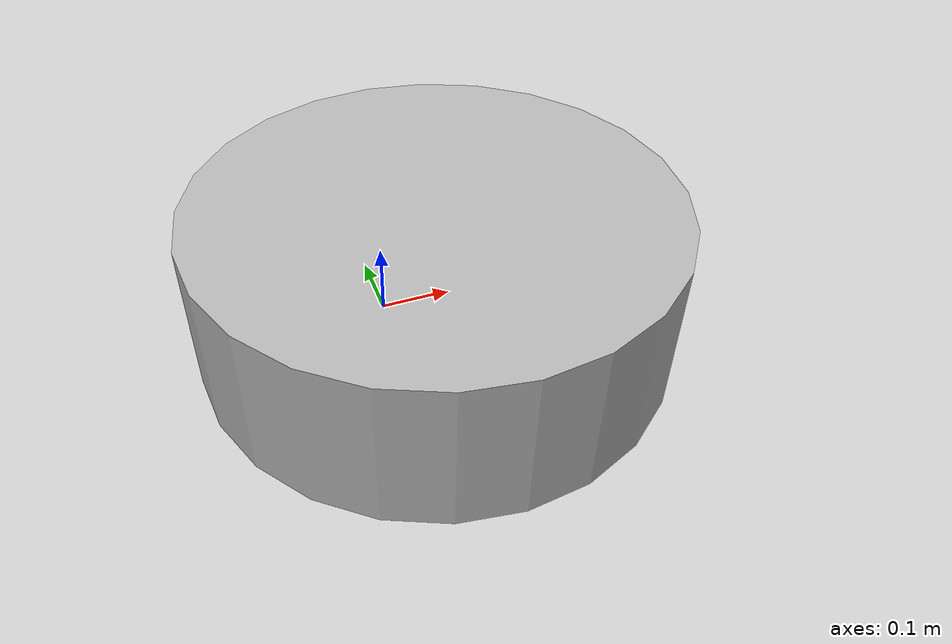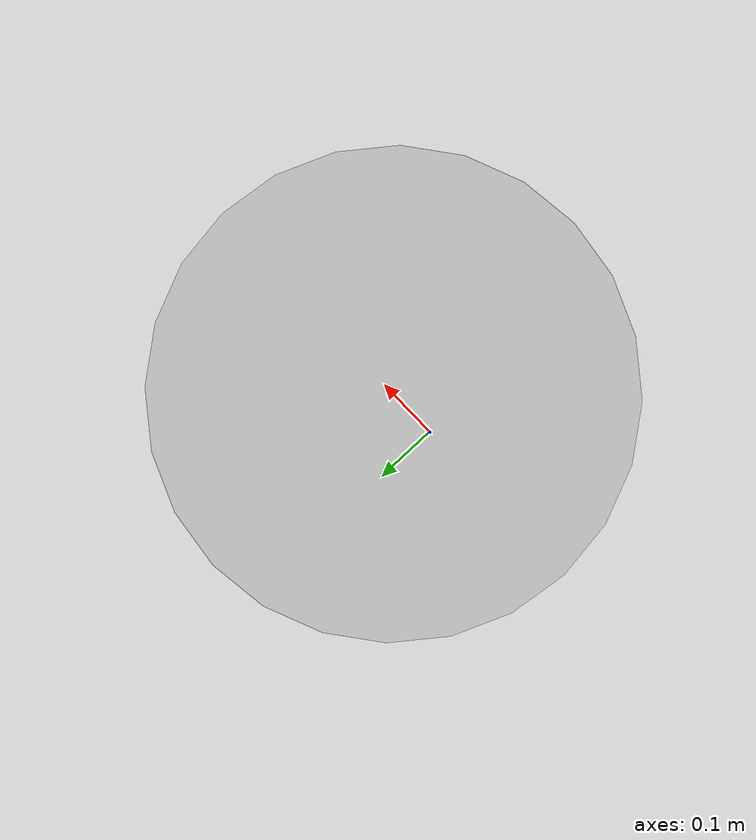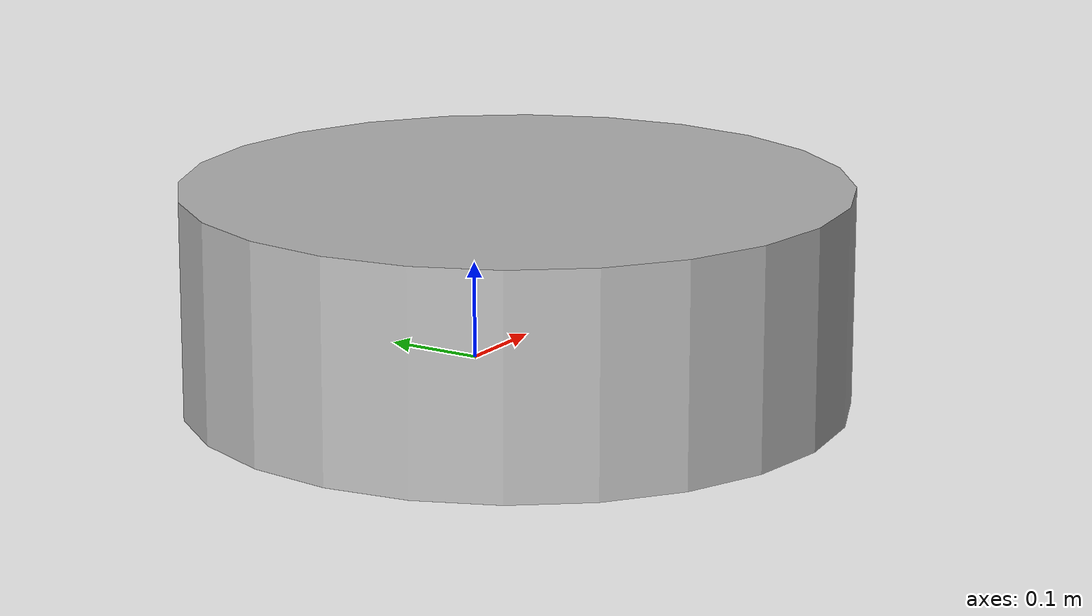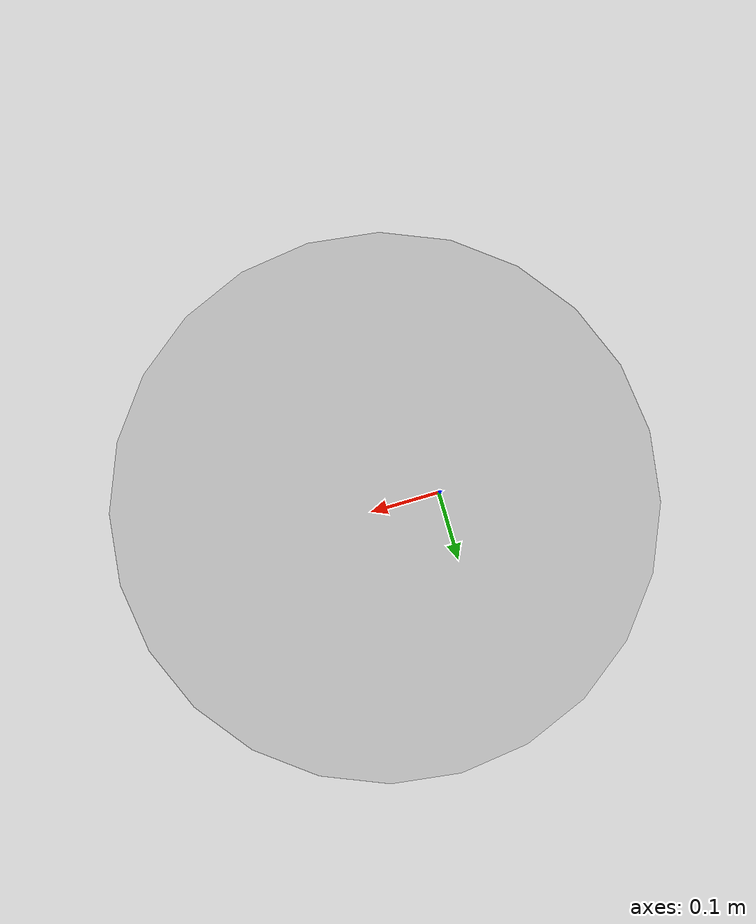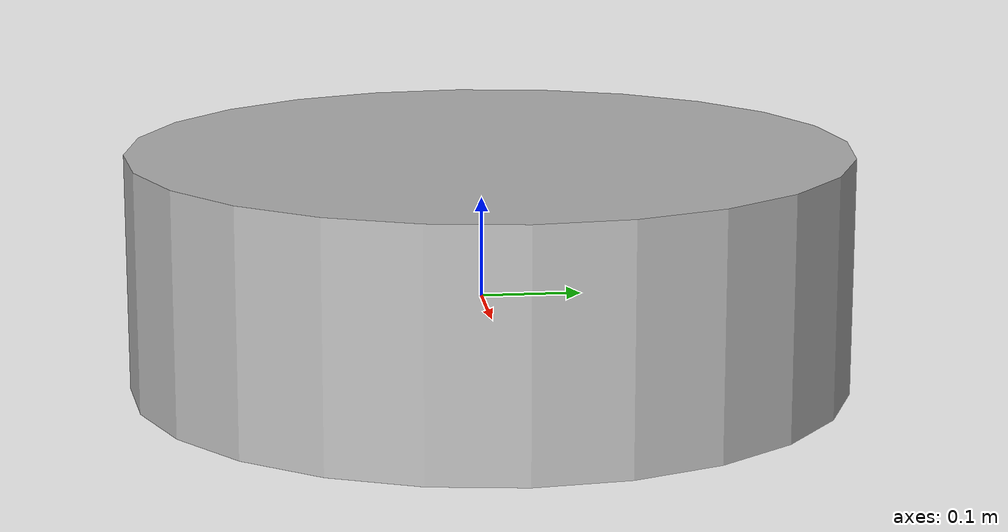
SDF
<?xml version="1.0" ?>
<sdf version="1.7">
  <world name="buoyant_cylinder">
    <plugin
      filename="gz-sim-apply-link-wrench-system"
      name="gz::sim::systems::ApplyLinkWrench">
    </plugin>

    <scene>
      <ambient>0.0 1.0 1.0</ambient>
      <background>0.0 0.7 0.8</background>

      <grid>false</grid>
    </scene>

    <light type="directional" name="sun">
      <cast_shadows>true</cast_shadows>
      <pose>0 0 10 0 0 0</pose>
      <diffuse>1 1 1 1</diffuse>
      <specular>0.5 0.5 0.5 1</specular>
      <attenuation>
        <range>1000</range>
        <constant>0.9</constant>
        <linear>0.01</linear>
        <quadratic>0.001</quadratic>
      </attenuation>
      <direction>-0.5 0.1 -0.9</direction>
    </light>

    <plugin
      filename="gz-sim-physics-system"
      name="gz::sim::systems::Physics">
    </plugin>

    <plugin
      filename="gz-sim-buoyancy-system"
      name="gz::sim::systems::Buoyancy">
      <graded_buoyancy>
        <default_density>1025</default_density>
        <density_change>
          <above_depth>0</above_depth>
          <density>1.125</density>
        </density_change>
      </graded_buoyancy>
    </plugin>

    <plugin
      filename="gz-sim-user-commands-system"
      name="gz::sim::systems::UserCommands">
    </plugin>

    <plugin
      filename="gz-sim-scene-broadcaster-system"
      name="gz::sim::systems::SceneBroadcaster">
    </plugin>

    <plugin
      filename="gz-sim-sensors-system"
      name="gz::sim::systems::Sensors">
    </plugin>

    <gui fullscreen="0">
      <!-- 3D scene -->
      <plugin filename="MinimalScene" name="3D View">
        <gz-gui>
          <title>3D View</title>
          <property type="bool" key="showTitleBar">false</property>
          <property type="string" key="state">docked</property>
        </gz-gui>
        <engine>ogre2</engine>
        <scene>scene</scene>
        <ambient_light>0.4 0.4 0.4</ambient_light>
        <background_color>0.8 0.8 0.8</background_color>
        <!-- looking at robot -->
        <camera_pose>0 6 6 0 0.5 -1.57</camera_pose>
        <!-- looking at all science data for 2003080103_mb_l3_las.csv -->
        <camera_clip>
          <!-- ortho view needs low near clip -->
          <!-- but a very low near clip messes orbit's far clip ?! -->
          <near>0.1</near>
          <!-- See 3000 km away -->
          <far>3000000</far>
        </camera_clip>
      </plugin>
      <!-- Plugins that add functionality to the scene -->
      <plugin filename="EntityContextMenuPlugin" name="Entity context menu">
        <gz-gui>
          <property key="state" type="string">floating</property>
          <property key="width" type="double">5</property>
          <property key="height" type="double">5</property>
          <property key="showTitleBar" type="bool">false</property>
        </gz-gui>
      </plugin>
      <plugin filename="GzSceneManager" name="Scene Manager">
        <gz-gui>
          <anchors target="3D View">
            <line own="right" target="right"/>
            <line own="top" target="top"/>
          </anchors>
          <property key="resizable" type="bool">false</property>
          <property key="width" type="double">5</property>
          <property key="height" type="double">5</property>
          <property key="state" type="string">floating</property>
          <property key="showTitleBar" type="bool">false</property>
        </gz-gui>
      </plugin>
      <plugin filename="InteractiveViewControl" name="Interactive view control">
        <gz-gui>
          <anchors target="3D View">
            <line own="right" target="right"/>
            <line own="top" target="top"/>
          </anchors>
          <property key="resizable" type="bool">false</property>
          <property key="width" type="double">5</property>
          <property key="height" type="double">5</property>
          <property key="state" type="string">floating</property>
          <property key="showTitleBar" type="bool">false</property>
        </gz-gui>
      </plugin>
      <plugin filename="CameraTracking" name="Camera Tracking">
        <gz-gui>
          <anchors target="3D View">
            <line own="right" target="right"/>
            <line own="top" target="top"/>
          </anchors>
          <property key="resizable" type="bool">false</property>
          <property key="width" type="double">5</property>
          <property key="height" type="double">5</property>
          <property key="state" type="string">floating</property>
          <property key="showTitleBar" type="bool">false</property>
        </gz-gui>
      </plugin>
      <plugin filename="MarkerManager" name="Marker manager">
        <gz-gui>
          <anchors target="3D View">
            <line own="right" target="right"/>
            <line own="top" target="top"/>
          </anchors>
          <property key="resizable" type="bool">false</property>
          <property key="width" type="double">5</property>
          <property key="height" type="double">5</property>
          <property key="state" type="string">floating</property>
          <property key="showTitleBar" type="bool">false</property>
        </gz-gui>
        <warn_on_action_failure>false</warn_on_action_failure>
      </plugin>
      <plugin filename="SelectEntities" name="Select Entities">
        <gz-gui>
          <anchors target="Select entities">
            <line own="right" target="right"/>
            <line own="top" target="top"/>
          </anchors>
          <property key="resizable" type="bool">false</property>
          <property key="width" type="double">5</property>
          <property key="height" type="double">5</property>
          <property key="state" type="string">floating</property>
          <property key="showTitleBar" type="bool">false</property>
        </gz-gui>
      </plugin>
      <plugin filename="VisualizationCapabilities" name="Visualization Capabilities">
        <gz-gui>
          <anchors target="Select entities">
            <line own="right" target="right"/>
            <line own="top" target="top"/>
          </anchors>
          <property key="resizable" type="bool">false</property>
          <property key="width" type="double">5</property>
          <property key="height" type="double">5</property>
          <property key="state" type="string">floating</property>
          <property key="showTitleBar" type="bool">false</property>
        </gz-gui>
      </plugin>
      <plugin filename="Spawn" name="Spawn Entities">
        <gz-gui>
          <anchors target="Select entities">
            <line own="right" target="right"/>
            <line own="top" target="top"/>
          </anchors>
          <property key="resizable" type="bool">false</property>
          <property key="width" type="double">5</property>
          <property key="height" type="double">5</property>
          <property key="state" type="string">floating</property>
          <property key="showTitleBar" type="bool">false</property>
        </gz-gui>
      </plugin>
      <!-- World control -->
      <plugin filename="WorldControl" name="World control">
        <gz-gui>
          <title>World control</title>
          <property type="bool" key="showTitleBar">false</property>
          <property type="bool" key="resizable">false</property>
          <property type="double" key="height">72</property>
          <property type="double" key="width">121</property>
          <property type="double" key="z">1</property>
          <property type="string" key="state">floating</property>
          <anchors target="3D View">
            <line own="left" target="left"/>
            <line own="bottom" target="bottom"/>
          </anchors>
        </gz-gui>
        <play_pause>true</play_pause>
        <step>true</step>
        <start_paused>true</start_paused>
      </plugin>
      <!-- World statistics -->
      <plugin filename="WorldStats" name="World stats">
        <gz-gui>
          <title>World stats</title>
          <property type="bool" key="showTitleBar">false</property>
          <property type="bool" key="resizable">false</property>
          <property type="double" key="height">110</property>
          <property type="double" key="width">290</property>
          <property type="double" key="z">1</property>
          <property type="string" key="state">floating</property>
          <anchors target="3D View">
            <line own="right" target="right"/>
            <line own="bottom" target="bottom"/>
          </anchors>
        </gz-gui>
        <sim_time>true</sim_time>
        <real_time>true</real_time>
        <real_time_factor>true</real_time_factor>
        <iterations>true</iterations>
      </plugin>
      <plugin filename="ComponentInspector" name="Component Inspector">
        <gz-gui>
          <title>Inspector</title>
          <property type="string" key="state">docked_collapsed</property>
        </gz-gui>
      </plugin>
      <plugin filename="GridConfig" name="Grid config">
        <gz-gui>
          <property type="string" key="state">docked_collapsed</property>
        </gz-gui>
        <insert>
          <!-- 300 km x 300 km -->
          <cell_count>6</cell_count>
          <vertical_cell_count>0</vertical_cell_count>
          <!-- 50 km -->
          <cell_length>50000</cell_length>
          <pose>0 100000 0  0 0 0.32</pose>
          <color>0 1 0 1</color>
        </insert>
        <insert>
          <!-- 0.1 km x 0.1 km -->
          <cell_count>100</cell_count>
          <vertical_cell_count>0</vertical_cell_count>
          <cell_length>1</cell_length>
          <pose>0 0 0  0 0 0</pose>
          <color>0.5 0.5 0.5 1</color>
        </insert>
      </plugin>
    </gui>

    <!-- This invisible plane helps with orbiting the camera, especially at large scales -->
    <model name="horizontal_plane">
      <static>true</static>
      <link name="link">
        <visual name="visual">
          <geometry>
            <plane>
              <normal>0 0 1</normal>
              <!-- 300 km x 300 km -->
              <size>300000 300000</size>
            </plane>
          </geometry>
          <transparency>1.0</transparency>
        </visual>
      </link>
    </model>

    <!-- User options - Modify these parameters according to your needs -->

    <!-- Physics parameters -->
    <physics name="1ms" type="dart">
      <max_step_size>0.02</max_step_size>
      <real_time_factor>1</real_time_factor>
    </physics>

    <!-- Model to load -->
    <model name="my_turtle">
      <link name='base_link'>

        <inertial>
          <pose>0 0 0 0 0 0</pose>
          <mass>10</mass>
          <inertia>
            <ixx>0.35032999999999995</ixx>
            <ixy>0</ixy>
            <ixz>0</ixz>
            <iyy>0.35032999999999995</iyy>
            <iyz>0</iyz>
            <izz>0.61250000000000006</izz>
          </inertia>
        </inertial>

        <collision name='collision'>
          <geometry>
            <box>
              <size>1 1 0.009948450858321252</size>
            </box>
          </geometry>
        </collision>

        <visual name='visual'>
          <pose>0.08 0 0.05 0 0 0</pose>
          <geometry>
            <cylinder>
            <radius>0.35</radius>
              <length>0.23</length>
            </cylinder>
          </geometry>
        </visual>
      </link>

      <!-- Uncomment to generate a trajectory -->
      <plugin filename="gz-sim-trajectory-follower-system"
              name="gz::sim::systems::TrajectoryFollower">
        <link_name>base_link</link_name>
        <force>0.2</force>
        <torque>0.01</torque>
        <range_tolerance>0.1</range_tolerance>
        <waypoints>
          <waypoint>1 0</waypoint>
        </waypoints>
      </plugin>

      <!-- Uncomment to add hydrodynamics -->
      <plugin
        filename="gz-sim-hydrodynamics-system"
        name="gz::sim::systems::Hydrodynamics">
        <link_name>base_link</link_name>
        <xDotU>-0.04876161</xDotU>
        <yDotV>-1.26324739</yDotV>
        <zDotW>-1.26324739</zDotW>
        <kDotP>0</kDotP>
        <mDotQ>-0.3346</mDotQ>
        <nDotR>-0.3346</nDotR>
        <xUabsU>-0.62282</xUabsU>
        <xU>-5</xU>
        <yVabsV>-60.127</yVabsV>
        <yV>-5</yV>
        <zWabsW>-6.0127</zWabsW>
        <zW>-100</zW>
        <kPabsP>-0.001916</kPabsP>
        <kP>-1</kP>
        <mQabsQ>-6.32698957</mQabsQ>
        <mQ>-1</mQ>
        <nRabsR>-6.32698957</nRabsR>
        <nR>-1</nR>
      </plugin>

    </model>

  </world>
</sdf>
